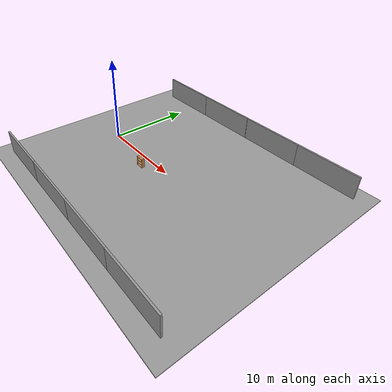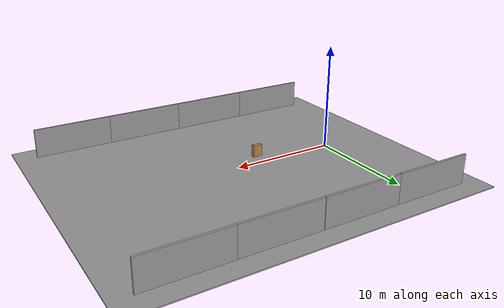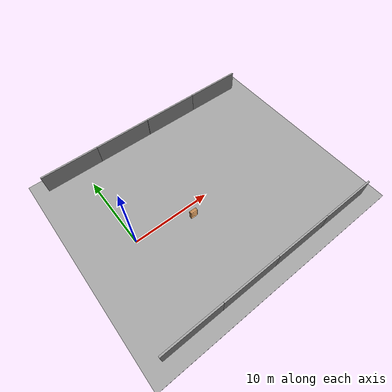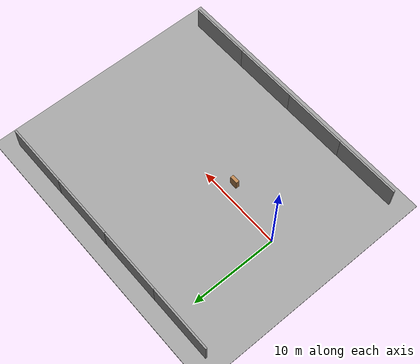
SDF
<sdf version="1.7">
 <world name="default">
  <light name="sun" type="directional">
   <pose>0 0 10 0 -0 0</pose>
   <diffuse>0.8 0.8 0.8 1</diffuse>
   <specular>0.2 0.2 0.2 1</specular>
   <attenuation>
    <range>1000</range>
    <constant>0.9</constant>
    <linear>0.01</linear>
    <quadratic>0.001</quadratic>
   </attenuation>
   <direction>-0.5 0.1 -0.9</direction>
   <spot><inner_angle>0</inner_angle><outer_angle>0</outer_angle><falloff>0</falloff></spot>
  </light>
  <model name="ground_plane">
   <static>1</static>
   <link name="link">
    <collision name="collision">
     <geometry><plane><normal>0 0 1</normal><size>100 100</size></plane></geometry>
     <surface><friction><ode><mu>100</mu><mu2>50</mu2></ode></friction></surface>
    </collision>
    <visual name="visual">
     <cast_shadows>0</cast_shadows>
     <geometry><plane><normal>0 0 1</normal><size>100 100</size></plane></geometry>
     <material>
      <script><uri>file://media/materials/scripts/gazebo.material</uri><name>Gazebo/Grey</name></script>
     </material>
    </visual>
   </link>
  </model>
  <gravity>0 0 -9.8</gravity>
  <magnetic_field>6e-06 2.3e-05 -4.2e-05</magnetic_field>
  <atmosphere type="adiabatic"/>
  <physics name="default_physics" default="0" type="ode">
   <max_step_size>0.001</max_step_size>
   <real_time_factor>1</real_time_factor>
   <real_time_update_rate>1000</real_time_update_rate>
  </physics>
  <scene><ambient>0.4 0.4 0.4 1</ambient><background>0.7 0.7 0.7 1</background><shadows>1</shadows></scene>
  <audio><device>default</device></audio>
  <spherical_coordinates>
   <surface_model>EARTH_WGS84</surface_model>
   <latitude_deg>0</latitude_deg>
   <longitude_deg>0</longitude_deg>
   <elevation>0</elevation>
   <heading_deg>0</heading_deg>
  </spherical_coordinates>
  <model name="bookshelf">
   <static>1</static>
   <link name="link">
    <inertial><mass>1</mass></inertial>
    <collision name="back">
     <pose>0 0.005 0.6 0 -0 0</pose>
     <geometry><box><size>0.9 0.01 1.2</size></box></geometry>
    </collision>
    <visual name="visual1">
     <pose>0 0.005 0.6 0 -0 0</pose>
     <geometry><box><size>0.9 0.01 1.2</size></box></geometry>
     <material>
      <script><uri>file://media/materials/scripts/gazebo.material</uri><name>Gazebo/WoodPallet</name></script>
     </material>
    </visual>
    <collision name="left_side">
     <pose>0.45 -0.195 0.6 0 -0 0</pose>
     <geometry><box><size>0.02 0.4 1.2</size></box></geometry>
    </collision>
    <visual name="visual2">
     <pose>0.45 -0.195 0.6 0 -0 0</pose>
     <geometry><box><size>0.02 0.4 1.2</size></box></geometry>
     <material>
      <script><uri>file://media/materials/scripts/gazebo.material</uri><name>Gazebo/WoodPallet</name></script>
     </material>
    </visual>
    <collision name="right_side">
     <pose>-0.45 -0.195 0.6 0 -0 0</pose>
     <geometry><box><size>0.02 0.4 1.2</size></box></geometry>
    </collision>
    <visual name="visual3">
     <pose>-0.45 -0.195 0.6 0 -0 0</pose>
     <geometry><box><size>0.02 0.4 1.2</size></box></geometry>
     <material>
      <script><uri>file://media/materials/scripts/gazebo.material</uri><name>Gazebo/WoodPallet</name></script>
     </material>
    </visual>
    <collision name="bottom">
     <pose>0 -0.195 0.03 0 -0 0</pose>
     <geometry><box><size>0.88 0.4 0.06</size></box></geometry>
    </collision>
    <visual name="visual4">
     <pose>0 -0.195 0.03 0 -0 0</pose>
     <geometry><box><size>0.88 0.4 0.06</size></box></geometry>
     <material>
      <script><uri>file://media/materials/scripts/gazebo.material</uri><name>Gazebo/WoodPallet</name></script>
     </material>
    </visual>
    <collision name="top">
     <pose>0 -0.195 1.19 0 -0 0</pose>
     <geometry><box><size>0.88 0.4 0.02</size></box></geometry>
    </collision>
    <visual name="visual5">
     <pose>0 -0.195 1.19 0 -0 0</pose>
     <geometry><box><size>0.88 0.4 0.02</size></box></geometry>
     <material>
      <script><uri>file://media/materials/scripts/gazebo.material</uri><name>Gazebo/WoodPallet</name></script>
     </material>
    </visual>
    <collision name="low_shelf">
     <pose>0 -0.195 0.43 0 -0 0</pose>
     <geometry><box><size>0.88 0.4 0.02</size></box></geometry>
    </collision>
    <visual name="visual6">
     <pose>0 -0.195 0.43 0 -0 0</pose>
     <geometry><box><size>0.88 0.4 0.02</size></box></geometry>
     <material>
      <script><uri>file://media/materials/scripts/gazebo.material</uri><name>Gazebo/WoodPallet</name></script>
     </material>
    </visual>
    <collision name="high_shelf">
     <pose>0 -0.195 0.8 0 -0 0</pose>
     <geometry><box><size>0.88 0.4 0.02</size></box></geometry>
    </collision>
    <visual name="visual7">
     <pose>0 -0.195 0.8 0 -0 0</pose>
     <geometry><box><size>0.88 0.4 0.02</size></box></geometry>
     <material>
      <script><uri>file://media/materials/scripts/gazebo.material</uri><name>Gazebo/WoodPallet</name></script>
     </material>
    </visual>
   </link>
   <pose>7.15204 -1.20741 0 0 -0 0</pose>
  </model>
  <model name="ground_plane_0">
   <static>1</static>
   <link name="link">
    <collision name="collision">
     <geometry><plane><normal>0 0 1</normal><size>100 100</size></plane></geometry>
     <surface>
      <contact><collide_bitmask>65535</collide_bitmask></contact>
      <friction><ode><mu>100</mu><mu2>50</mu2></ode></friction>
     </surface>
    </collision>
    <visual name="visual">
     <cast_shadows>0</cast_shadows>
     <geometry><plane><normal>0 0 1</normal><size>100 100</size></plane></geometry>
     <material>
      <script><uri>file://media/materials/scripts/gazebo.material</uri><name>Gazebo/Grey</name></script>
     </material>
    </visual>
   </link>
   <pose>17.5415 -4.29103 0 0 -0 0</pose>
  </model>
  <model name="grey_wall">
   <static>1</static>
   <link name="link">
    <pose>0 0 1.4 0 -0 0</pose>
    <collision name="collision"><geometry><box><size>7.5 0.2 2.8</size></box></geometry></collision>
    <visual name="visual">
     <cast_shadows>0</cast_shadows>
     <geometry><box><size>7.5 0.2 2.8</size></box></geometry>
     <material>
      <script>
       <uri>model://grey_wall/materials/scripts</uri>
       <uri>model://grey_wall/materials/textures</uri>
       <name>vrc/grey_wall</name>
      </script>
     </material>
    </visual>
   </link>
   <pose>14.0733 -11.8338 0 0 -0 0</pose>
  </model>
  <model name="grey_wall_clone">
   <static>1</static>
   <link name="link">
    <pose>0 0 1.4 0 -0 0</pose>
    <collision name="collision"><geometry><box><size>7.5 0.2 2.8</size></box></geometry></collision>
    <visual name="visual">
     <cast_shadows>0</cast_shadows>
     <geometry><box><size>7.5 0.2 2.8</size></box></geometry>
     <material>
      <script>
       <uri>model://grey_wall/materials/scripts</uri>
       <uri>model://grey_wall/materials/textures</uri>
       <name>vrc/grey_wall</name>
      </script>
     </material>
    </visual>
   </link>
   <pose>21.3952 -11.8385 0 0 -0 0</pose>
  </model>
  <model name="grey_wall_clone_0">
   <static>1</static>
   <link name="link">
    <pose>0 0 1.4 0 -0 0</pose>
    <collision name="collision"><geometry><box><size>7.5 0.2 2.8</size></box></geometry></collision>
    <visual name="visual">
     <cast_shadows>0</cast_shadows>
     <geometry><box><size>7.5 0.2 2.8</size></box></geometry>
     <material>
      <script>
       <uri>model://grey_wall/materials/scripts</uri>
       <uri>model://grey_wall/materials/textures</uri>
       <name>vrc/grey_wall</name>
      </script>
     </material>
    </visual>
   </link>
   <pose>13.9934 12.5901 0 0 -0 0</pose>
  </model>
  <model name="grey_wall_clone_0_clone">
   <static>1</static>
   <link name="link">
    <pose>0 0 1.4 0 -0 0</pose>
    <collision name="collision"><geometry><box><size>7.5 0.2 2.8</size></box></geometry></collision>
    <visual name="visual">
     <cast_shadows>0</cast_shadows>
     <geometry><box><size>7.5 0.2 2.8</size></box></geometry>
     <material>
      <script>
       <uri>model://grey_wall/materials/scripts</uri>
       <uri>model://grey_wall/materials/textures</uri>
       <name>vrc/grey_wall</name>
      </script>
     </material>
    </visual>
   </link>
   <pose>21.5003 12.6002 0 0 -0 0</pose>
  </model>
  <model name="grey_wall_clone_0_clone_0">
   <static>1</static>
   <link name="link">
    <pose>0 0 1.4 0 -0 0</pose>
    <collision name="collision"><geometry><box><size>7.5 0.2 2.8</size></box></geometry></collision>
    <visual name="visual">
     <cast_shadows>0</cast_shadows>
     <geometry><box><size>7.5 0.2 2.8</size></box></geometry>
     <material>
      <script>
       <uri>model://grey_wall/materials/scripts</uri>
       <uri>model://grey_wall/materials/textures</uri>
       <name>vrc/grey_wall</name>
      </script>
     </material>
    </visual>
   </link>
   <pose>6.44916 12.588 0 0 -0 0</pose>
  </model>
  <model name="grey_wall_clone_0_clone_0_clone">
   <static>1</static>
   <link name="link">
    <pose>0 0 1.4 0 -0 0</pose>
    <collision name="collision"><geometry><box><size>7.5 0.2 2.8</size></box></geometry></collision>
    <visual name="visual">
     <cast_shadows>0</cast_shadows>
     <geometry><box><size>7.5 0.2 2.8</size></box></geometry>
     <material>
      <script>
       <uri>model://grey_wall/materials/scripts</uri>
       <uri>model://grey_wall/materials/textures</uri>
       <name>vrc/grey_wall</name>
      </script>
     </material>
    </visual>
   </link>
   <pose>-1.05382 12.5847 0 0 -0 0</pose>
  </model>
  <model name="grey_wall_clone_1">
   <static>1</static>
   <link name="link">
    <pose>0 0 1.4 0 -0 0</pose>
    <collision name="collision"><geometry><box><size>7.5 0.2 2.8</size></box></geometry></collision>
    <visual name="visual">
     <cast_shadows>0</cast_shadows>
     <geometry><box><size>7.5 0.2 2.8</size></box></geometry>
     <material>
      <script>
       <uri>model://grey_wall/materials/scripts</uri>
       <uri>model://grey_wall/materials/textures</uri>
       <name>vrc/grey_wall</name>
      </script>
     </material>
    </visual>
   </link>
   <pose>6.58372 -11.8306 0 0 -0 0</pose>
  </model>
  <model name="grey_wall_clone_1_clone">
   <static>1</static>
   <link name="link">
    <pose>0 0 1.4 0 -0 0</pose>
    <collision name="collision"><geometry><box><size>7.5 0.2 2.8</size></box></geometry></collision>
    <visual name="visual">
     <cast_shadows>0</cast_shadows>
     <geometry><box><size>7.5 0.2 2.8</size></box></geometry>
     <material>
      <script>
       <uri>model://grey_wall/materials/scripts</uri>
       <uri>model://grey_wall/materials/textures</uri>
       <name>vrc/grey_wall</name>
      </script>
     </material>
    </visual>
   </link>
   <pose>-0.925121 -11.8298 0 0 -0 0</pose>
  </model>
 </world>
</sdf>
